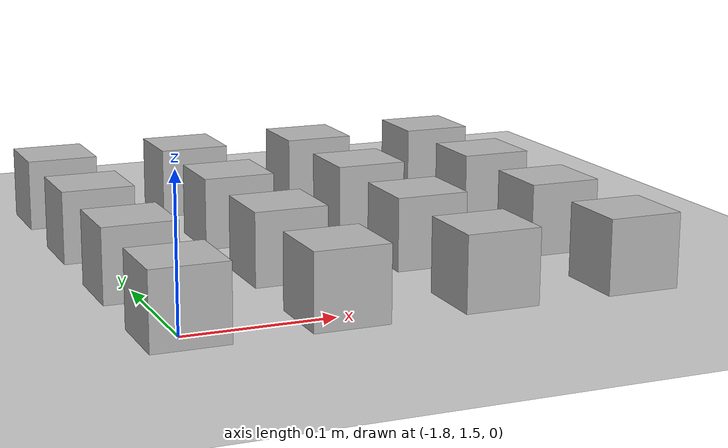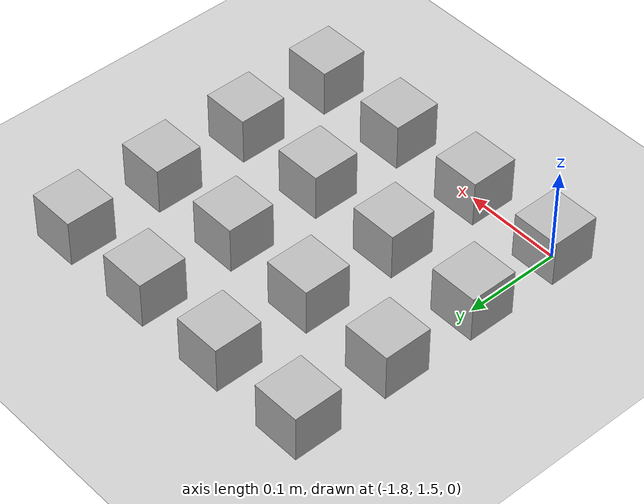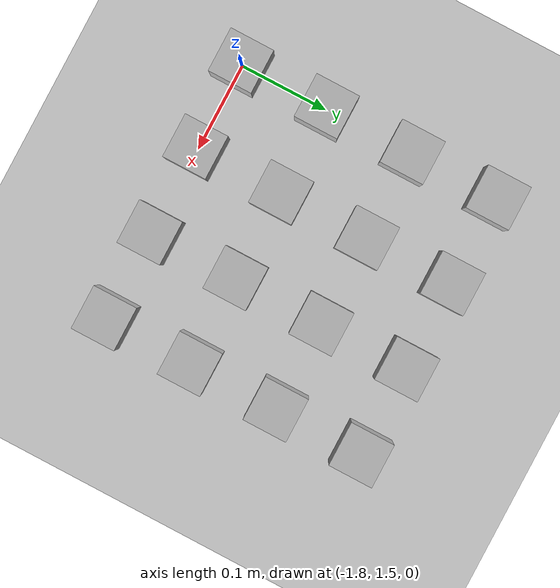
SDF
<sdf version="1.6">
 <world name="default">
  <model name="ground_plane">
   <static>1</static>
   <link name="link">
    <collision name="collision">
     <geometry><plane><normal>0 0 1</normal><size>100 100</size></plane></geometry>
     <surface><friction><ode><mu>100</mu><mu2>50</mu2></ode></friction></surface>
    </collision>
    <visual name="visual">
     <cast_shadows>0</cast_shadows>
     <geometry><plane><normal>0 0 1</normal><size>100 100</size></plane></geometry>
     <material>
      <script><uri>file://media/materials/scripts/gazebo.material</uri><name>Gazebo/Grey</name></script>
     </material>
    </visual>
   </link>
  </model>
  <model name="at4">
   <static>0</static>
   <link name="link">
    <inertial>
     <mass>0.01</mass>
     <inertia><ixx>4e-05</ixx><ixy>0</ixy><ixz>0</ixz><iyy>4e-05</iyy><iyz>0</iyz><izz>4e-05</izz></inertia>
    </inertial>
    <visual name="visual">
     <geometry><box><size>0.05 0.05 0.05</size></box></geometry>
     <material>
      <script>
       <uri>model://at0/materials/scripts</uri>
       <uri>model://at0/materials/textures</uri>
       <name>at0/Diffuse</name>
      </script>
     </material>
    </visual>
    <collision name="collision">
     <geometry><box><size>0.05 0.05 0.05</size></box></geometry>
     <surface><friction><ode><mu>0.8</mu><mu2>0.7</mu2></ode></friction></surface>
    </collision>
   </link>
   <pose>-1.8 1.5 0.025 0 -0 0</pose>
  </model>
  <model name="at5">
   <static>0</static>
   <link name="link">
    <inertial>
     <mass>0.01</mass>
     <inertia><ixx>4e-05</ixx><ixy>0</ixy><ixz>0</ixz><iyy>4e-05</iyy><iyz>0</iyz><izz>4e-05</izz></inertia>
    </inertial>
    <visual name="visual">
     <geometry><box><size>0.05 0.05 0.05</size></box></geometry>
     <material>
      <script>
       <uri>model://at0/materials/scripts</uri>
       <uri>model://at0/materials/textures</uri>
       <name>at0/Diffuse</name>
      </script>
     </material>
    </visual>
    <collision name="collision">
     <geometry><box><size>0.05 0.05 0.05</size></box></geometry>
     <surface><friction><ode><mu>0.8</mu><mu2>0.7</mu2></ode></friction></surface>
    </collision>
   </link>
   <pose>-1.7 1.5 0.025 0 -0 0</pose>
  </model>
  <model name="at6">
   <static>0</static>
   <link name="link">
    <inertial>
     <mass>0.01</mass>
     <inertia><ixx>4e-05</ixx><ixy>0</ixy><ixz>0</ixz><iyy>4e-05</iyy><iyz>0</iyz><izz>4e-05</izz></inertia>
    </inertial>
    <visual name="visual">
     <geometry><box><size>0.05 0.05 0.05</size></box></geometry>
     <material>
      <script>
       <uri>model://at0/materials/scripts</uri>
       <uri>model://at0/materials/textures</uri>
       <name>at0/Diffuse</name>
      </script>
     </material>
    </visual>
    <collision name="collision">
     <geometry><box><size>0.05 0.05 0.05</size></box></geometry>
     <surface><friction><ode><mu>0.8</mu><mu2>0.7</mu2></ode></friction></surface>
    </collision>
   </link>
   <pose>-1.6 1.5 0.025 0 -0 0</pose>
  </model>
  <model name="at7">
   <static>0</static>
   <link name="link">
    <inertial>
     <mass>0.01</mass>
     <inertia><ixx>4e-05</ixx><ixy>0</ixy><ixz>0</ixz><iyy>4e-05</iyy><iyz>0</iyz><izz>4e-05</izz></inertia>
    </inertial>
    <visual name="visual">
     <geometry><box><size>0.05 0.05 0.05</size></box></geometry>
     <material>
      <script>
       <uri>model://at0/materials/scripts</uri>
       <uri>model://at0/materials/textures</uri>
       <name>at0/Diffuse</name>
      </script>
     </material>
    </visual>
    <collision name="collision">
     <geometry><box><size>0.05 0.05 0.05</size></box></geometry>
     <surface><friction><ode><mu>0.8</mu><mu2>0.7</mu2></ode></friction></surface>
    </collision>
   </link>
   <pose>-1.5 1.5 0.025 0 -0 0</pose>
  </model>
  <model name="at12">
   <static>0</static>
   <link name="link">
    <inertial>
     <mass>0.01</mass>
     <inertia><ixx>4e-05</ixx><ixy>0</ixy><ixz>0</ixz><iyy>4e-05</iyy><iyz>0</iyz><izz>4e-05</izz></inertia>
    </inertial>
    <visual name="visual">
     <geometry><box><size>0.05 0.05 0.05</size></box></geometry>
     <material>
      <script>
       <uri>model://at0/materials/scripts</uri>
       <uri>model://at0/materials/textures</uri>
       <name>at0/Diffuse</name>
      </script>
     </material>
    </visual>
    <collision name="collision">
     <geometry><box><size>0.05 0.05 0.05</size></box></geometry>
     <surface><friction><ode><mu>0.8</mu><mu2>0.7</mu2></ode></friction></surface>
    </collision>
   </link>
   <pose>-1.8 1.6 0.025 0 -0 0</pose>
  </model>
  <model name="at13">
   <static>0</static>
   <link name="link">
    <inertial>
     <mass>0.01</mass>
     <inertia><ixx>4e-05</ixx><ixy>0</ixy><ixz>0</ixz><iyy>4e-05</iyy><iyz>0</iyz><izz>4e-05</izz></inertia>
    </inertial>
    <visual name="visual">
     <geometry><box><size>0.05 0.05 0.05</size></box></geometry>
     <material>
      <script>
       <uri>model://at0/materials/scripts</uri>
       <uri>model://at0/materials/textures</uri>
       <name>at0/Diffuse</name>
      </script>
     </material>
    </visual>
    <collision name="collision">
     <geometry><box><size>0.05 0.05 0.05</size></box></geometry>
     <surface><friction><ode><mu>0.8</mu><mu2>0.7</mu2></ode></friction></surface>
    </collision>
   </link>
   <pose>-1.7 1.6 0.025 0 -0 0</pose>
  </model>
  <model name="at14">
   <static>0</static>
   <link name="link">
    <inertial>
     <mass>0.01</mass>
     <inertia><ixx>4e-05</ixx><ixy>0</ixy><ixz>0</ixz><iyy>4e-05</iyy><iyz>0</iyz><izz>4e-05</izz></inertia>
    </inertial>
    <visual name="visual">
     <geometry><box><size>0.05 0.05 0.05</size></box></geometry>
     <material>
      <script>
       <uri>model://at0/materials/scripts</uri>
       <uri>model://at0/materials/textures</uri>
       <name>at0/Diffuse</name>
      </script>
     </material>
    </visual>
    <collision name="collision">
     <geometry><box><size>0.05 0.05 0.05</size></box></geometry>
     <surface><friction><ode><mu>0.8</mu><mu2>0.7</mu2></ode></friction></surface>
    </collision>
   </link>
   <pose>-1.6 1.6 0.025 0 -0 0</pose>
  </model>
  <model name="at15">
   <static>0</static>
   <link name="link">
    <inertial>
     <mass>0.01</mass>
     <inertia><ixx>4e-05</ixx><ixy>0</ixy><ixz>0</ixz><iyy>4e-05</iyy><iyz>0</iyz><izz>4e-05</izz></inertia>
    </inertial>
    <visual name="visual">
     <geometry><box><size>0.05 0.05 0.05</size></box></geometry>
     <material>
      <script>
       <uri>model://at0/materials/scripts</uri>
       <uri>model://at0/materials/textures</uri>
       <name>at0/Diffuse</name>
      </script>
     </material>
    </visual>
    <collision name="collision">
     <geometry><box><size>0.05 0.05 0.05</size></box></geometry>
     <surface><friction><ode><mu>0.8</mu><mu2>0.7</mu2></ode></friction></surface>
    </collision>
   </link>
   <pose>-1.5 1.6 0.025 0 -0 0</pose>
  </model>
  <model name="at20">
   <static>0</static>
   <link name="link">
    <inertial>
     <mass>0.01</mass>
     <inertia><ixx>4e-05</ixx><ixy>0</ixy><ixz>0</ixz><iyy>4e-05</iyy><iyz>0</iyz><izz>4e-05</izz></inertia>
    </inertial>
    <visual name="visual">
     <geometry><box><size>0.05 0.05 0.05</size></box></geometry>
     <material>
      <script>
       <uri>model://at0/materials/scripts</uri>
       <uri>model://at0/materials/textures</uri>
       <name>at0/Diffuse</name>
      </script>
     </material>
    </visual>
    <collision name="collision">
     <geometry><box><size>0.05 0.05 0.05</size></box></geometry>
     <surface><friction><ode><mu>0.8</mu><mu2>0.7</mu2></ode></friction></surface>
    </collision>
   </link>
   <pose>-1.8 1.7 0.025 0 -0 0</pose>
  </model>
  <model name="at21">
   <static>0</static>
   <link name="link">
    <inertial>
     <mass>0.01</mass>
     <inertia><ixx>4e-05</ixx><ixy>0</ixy><ixz>0</ixz><iyy>4e-05</iyy><iyz>0</iyz><izz>4e-05</izz></inertia>
    </inertial>
    <visual name="visual">
     <geometry><box><size>0.05 0.05 0.05</size></box></geometry>
     <material>
      <script>
       <uri>model://at0/materials/scripts</uri>
       <uri>model://at0/materials/textures</uri>
       <name>at0/Diffuse</name>
      </script>
     </material>
    </visual>
    <collision name="collision">
     <geometry><box><size>0.05 0.05 0.05</size></box></geometry>
     <surface><friction><ode><mu>0.8</mu><mu2>0.7</mu2></ode></friction></surface>
    </collision>
   </link>
   <pose>-1.7 1.7 0.025 0 -0 0</pose>
  </model>
  <model name="at22">
   <static>0</static>
   <link name="link">
    <inertial>
     <mass>0.01</mass>
     <inertia><ixx>4e-05</ixx><ixy>0</ixy><ixz>0</ixz><iyy>4e-05</iyy><iyz>0</iyz><izz>4e-05</izz></inertia>
    </inertial>
    <visual name="visual">
     <geometry><box><size>0.05 0.05 0.05</size></box></geometry>
     <material>
      <script>
       <uri>model://at0/materials/scripts</uri>
       <uri>model://at0/materials/textures</uri>
       <name>at0/Diffuse</name>
      </script>
     </material>
    </visual>
    <collision name="collision">
     <geometry><box><size>0.05 0.05 0.05</size></box></geometry>
     <surface><friction><ode><mu>0.8</mu><mu2>0.7</mu2></ode></friction></surface>
    </collision>
   </link>
   <pose>-1.6 1.7 0.025 0 -0 0</pose>
  </model>
  <model name="at23">
   <static>0</static>
   <link name="link">
    <inertial>
     <mass>0.01</mass>
     <inertia><ixx>4e-05</ixx><ixy>0</ixy><ixz>0</ixz><iyy>4e-05</iyy><iyz>0</iyz><izz>4e-05</izz></inertia>
    </inertial>
    <visual name="visual">
     <geometry><box><size>0.05 0.05 0.05</size></box></geometry>
     <material>
      <script>
       <uri>model://at0/materials/scripts</uri>
       <uri>model://at0/materials/textures</uri>
       <name>at0/Diffuse</name>
      </script>
     </material>
    </visual>
    <collision name="collision">
     <geometry><box><size>0.05 0.05 0.05</size></box></geometry>
     <surface><friction><ode><mu>0.8</mu><mu2>0.7</mu2></ode></friction></surface>
    </collision>
   </link>
   <pose>-1.5 1.7 0.025 0 -0 0</pose>
  </model>
  <model name="at28">
   <static>0</static>
   <link name="link">
    <inertial>
     <mass>0.01</mass>
     <inertia><ixx>4e-05</ixx><ixy>0</ixy><ixz>0</ixz><iyy>4e-05</iyy><iyz>0</iyz><izz>4e-05</izz></inertia>
    </inertial>
    <visual name="visual">
     <geometry><box><size>0.05 0.05 0.05</size></box></geometry>
     <material>
      <script>
       <uri>model://at0/materials/scripts</uri>
       <uri>model://at0/materials/textures</uri>
       <name>at0/Diffuse</name>
      </script>
     </material>
    </visual>
    <collision name="collision">
     <geometry><box><size>0.05 0.05 0.05</size></box></geometry>
     <surface><friction><ode><mu>0.8</mu><mu2>0.7</mu2></ode></friction></surface>
    </collision>
   </link>
   <pose>-1.8 1.8 0.025 0 -0 0</pose>
  </model>
  <model name="at29">
   <static>0</static>
   <link name="link">
    <inertial>
     <mass>0.01</mass>
     <inertia><ixx>4e-05</ixx><ixy>0</ixy><ixz>0</ixz><iyy>4e-05</iyy><iyz>0</iyz><izz>4e-05</izz></inertia>
    </inertial>
    <visual name="visual">
     <geometry><box><size>0.05 0.05 0.05</size></box></geometry>
     <material>
      <script>
       <uri>model://at0/materials/scripts</uri>
       <uri>model://at0/materials/textures</uri>
       <name>at0/Diffuse</name>
      </script>
     </material>
    </visual>
    <collision name="collision">
     <geometry><box><size>0.05 0.05 0.05</size></box></geometry>
     <surface><friction><ode><mu>0.8</mu><mu2>0.7</mu2></ode></friction></surface>
    </collision>
   </link>
   <pose>-1.7 1.8 0.025 0 -0 0</pose>
  </model>
  <model name="at30">
   <static>0</static>
   <link name="link">
    <inertial>
     <mass>0.01</mass>
     <inertia><ixx>4e-05</ixx><ixy>0</ixy><ixz>0</ixz><iyy>4e-05</iyy><iyz>0</iyz><izz>4e-05</izz></inertia>
    </inertial>
    <visual name="visual">
     <geometry><box><size>0.05 0.05 0.05</size></box></geometry>
     <material>
      <script>
       <uri>model://at0/materials/scripts</uri>
       <uri>model://at0/materials/textures</uri>
       <name>at0/Diffuse</name>
      </script>
     </material>
    </visual>
    <collision name="collision">
     <geometry><box><size>0.05 0.05 0.05</size></box></geometry>
     <surface><friction><ode><mu>0.8</mu><mu2>0.7</mu2></ode></friction></surface>
    </collision>
   </link>
   <pose>-1.6 1.8 0.025 0 -0 0</pose>
  </model>
  <model name="at31">
   <static>0</static>
   <link name="link">
    <inertial>
     <mass>0.01</mass>
     <inertia><ixx>4e-05</ixx><ixy>0</ixy><ixz>0</ixz><iyy>4e-05</iyy><iyz>0</iyz><izz>4e-05</izz></inertia>
    </inertial>
    <visual name="visual">
     <geometry><box><size>0.05 0.05 0.05</size></box></geometry>
     <material>
      <script>
       <uri>model://at0/materials/scripts</uri>
       <uri>model://at0/materials/textures</uri>
       <name>at0/Diffuse</name>
      </script>
     </material>
    </visual>
    <collision name="collision">
     <geometry><box><size>0.05 0.05 0.05</size></box></geometry>
     <surface><friction><ode><mu>0.8</mu><mu2>0.7</mu2></ode></friction></surface>
    </collision>
   </link>
   <pose>-1.5 1.8 0.025 0 -0 0</pose>
  </model>
 </world>
</sdf>
